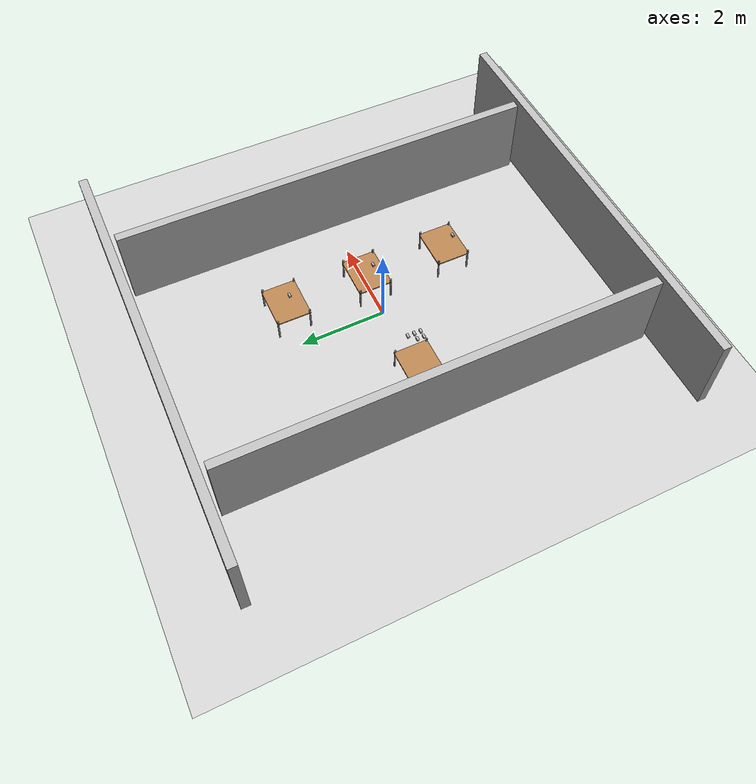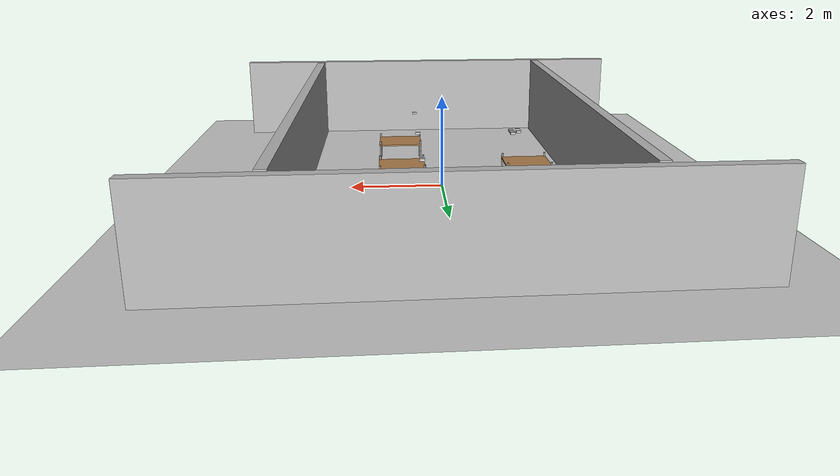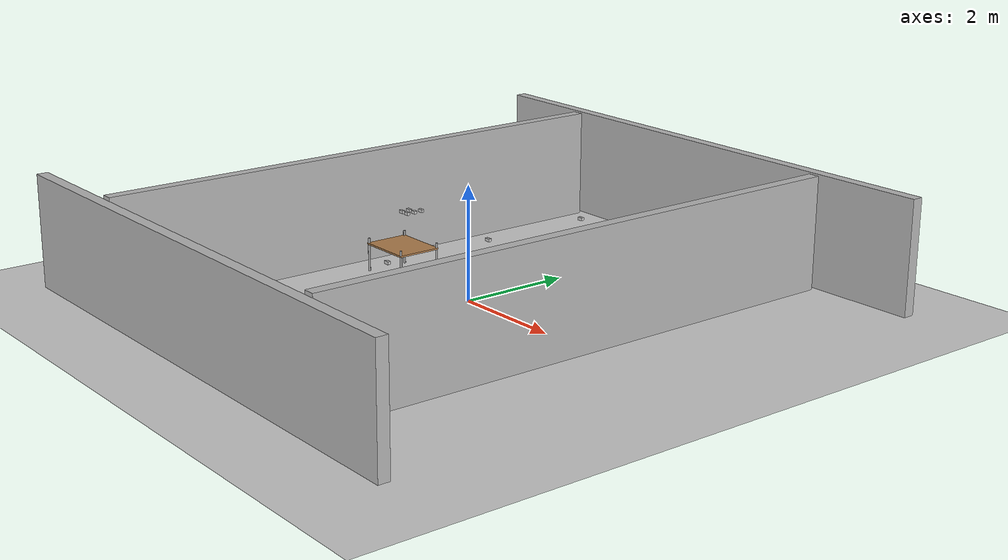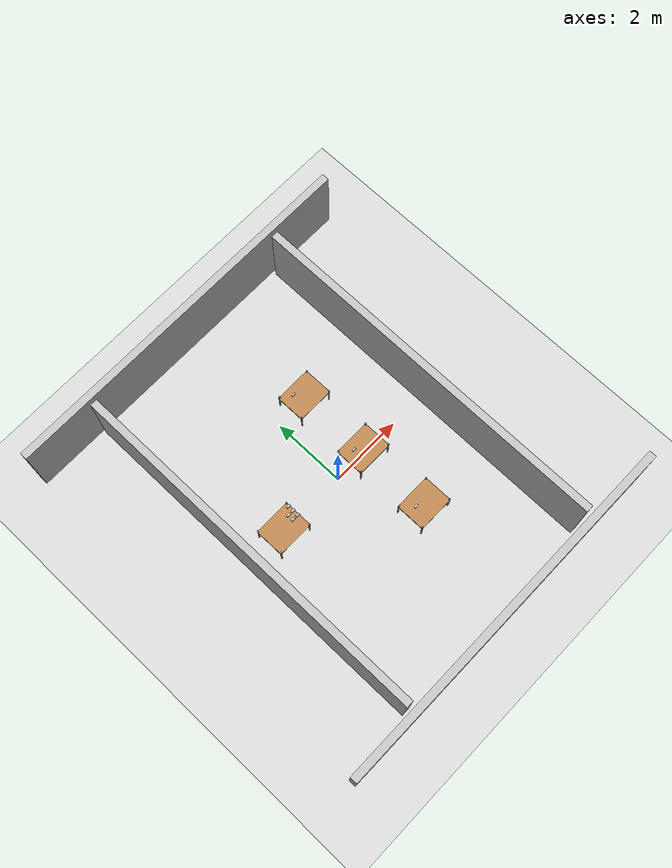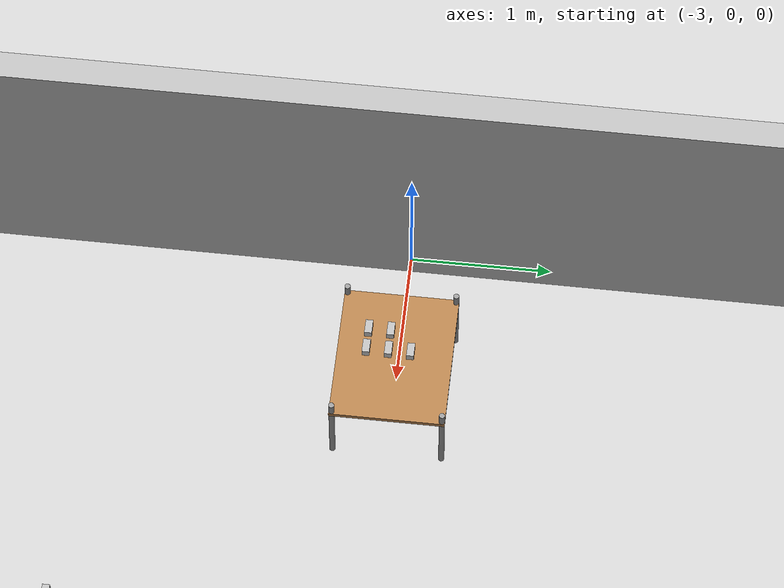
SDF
<?xml version="1.0" ?>
<sdf version="1.4">
  <world name="default">
    <physics type="ode">
      <gravity>0 0 -9.81</gravity>
      <ode>
        <solver>
          <type>quick</type>
          <iters>20</iters>
          <sor>1.0</sor>
        </solver>
        <constraints>
          <cfm>0.0</cfm>
          <erp>0.2</erp>
          <contact_max_correcting_vel>100.0</contact_max_correcting_vel>
          <contact_surface_layer>0.0</contact_surface_layer>
        </constraints>
      </ode>
      <real_time_update_rate>1000</real_time_update_rate>
      <max_step_size>0.001</max_step_size>
    </physics>
    <light type="directional" name="light1">
      <cast_shadows>true</cast_shadows>
      <pose>-2 0 4 0 0 0</pose>
      <diffuse>1.0 1.0 1.0 1</diffuse>
      <specular>0.1 0.1 0.1 1</specular>
      <attenuation>
        <range>20</range>
        <constant>0.9</constant>
        <linear>0.01</linear>
        <quadratic>0.001</quadratic>
      </attenuation>
      <direction>0.2 0.0 -1.0</direction>
    </light>
    <!-- A ground plane -->
    <include>
      <uri>model://ground_plane</uri>
    </include>
    <!-- A table -->
    <include>
      <uri>model://table_0m8</uri>
      <name>table_black</name>
      <pose>0.88 -2.0 -0.1 0 0 0</pose>
    </include>
    <!-- A table -->
    <include>
      <uri>model://table_0m8</uri>
      <name>table_white</name>
      <pose>0.88 0 -0.1 0 0 0</pose>
    </include>
    <!-- A table -->
    <include>
      <uri>model://table_0m8</uri>
      <name>table_color</name>
      <pose>0.88 2.0 -0.1 0 0 0</pose>
    </include>
    <!-- A table -->
    <include>
      <uri>model://table_0m8</uri>
      <name>table_unsorted</name>
      <pose>-1.88 0 -0.1 0 0 0</pose>
    </include>
    <!-- Cube with ArUco markers on the sides -->

    <include>
      <uri>model://ar_cube_2260</uri>
      <name>ar_cube_2260</name>
      <pose>0.53 -2.0 1.2 0 0 0</pose>
    </include>

    <include>
      <uri>model://ar_cube_2312</uri>
      <name>ar_cube_2312</name>
      <pose>0.53 0.00 1.2 0 0 0</pose>
    </include>

    <include>
      <uri>model://ar_cube_2290</uri>
      <name>ar_cube_2290</name>
      <pose>0.53 2.0 1.2 0 0 0</pose>
    </include>

    <include>
      <uri>model://ar_cube_2260</uri>
      <name>ar_cube_2260_unsorted</name>
      <pose>-1.53 0.0 1.2 0 0 3.14</pose>
    </include>

    <include>
      <uri>model://ar_cube_2287</uri>
      <name>ar_cube_2287_unsorted</name>
      <pose>-1.53 -0.15 1.2 0 0 3.14</pose>
    </include>

    <include>
      <uri>model://ar_cube_1658</uri>
      <name>ar_cube_1658_unsorted</name>
      <pose>-1.68 0.00 1.2 0 0 3.14</pose>
    </include>

    <include>
      <uri>model://ar_cube_2497</uri>
      <name>ar_cube_2497_unsorted</name>
      <pose>-1.53 0.15 1.2 0 0 3.14</pose>
    </include>

    <include>
      <uri>model://ar_cube_2558</uri>
      <name>ar_cube_2558_unsorted</name>
      <pose>-1.68 -0.15 1.2 0 0 3.14</pose>
    </include>

    <gui fullscreen="0">
      <camera name="user_camera">
        <pose>1.152670 -0.041479 3.496780 0.000000 1.123640 3.132190</pose>
        <view_controller>orbit</view_controller>
      </camera>
    </gui>

    <!-- the room -->
    <model name="wall_front_model">
      <pose>3.0 0.0 1.0 0.0 0.0 1.57</pose>
      <static>1</static>
      <link name="wall_front_body">
        <inertial>
          <mass>1.000000</mass>
          <inertia>
            <ixx>1.000000</ixx>
            <ixy>0.000000</ixy>
            <ixz>0.000000</ixz>
            <iyy>1.000000</iyy>
            <iyz>0.000000</iyz>
            <izz>1.000000</izz>
          </inertia>
        </inertial>
        <collision name="collision">
          <geometry>
            <box>
              <size>10.000000 0.200000 2.000000</size>
            </box>
          </geometry>
          <max_contacts>10</max_contacts>
          <surface>
            <bounce />
            <friction>
              <ode />
            </friction>
            <contact>
              <ode />
            </contact>
          </surface>
        </collision>
        <visual name="visual">
          <geometry>
            <box>
              <size>10.000000 0.200000 2.000000</size>
            </box>
          </geometry>
        </visual>
        <velocity_decay>
          <linear>0.000000</linear>
          <angular>0.000000</angular>
        </velocity_decay>
        <self_collide>0</self_collide>
        <kinematic>0</kinematic>
        <gravity>1</gravity>
      </link>
    </model>
    <model name="wall_back_model">
      <pose>-3.0 0.0 1.0 0.0 0.0 1.57</pose>
      <static>1</static>
      <link name="wall_back_body">
        <inertial>
          <mass>1.000000</mass>
          <inertia>
            <ixx>1.000000</ixx>
            <ixy>0.000000</ixy>
            <ixz>0.000000</ixz>
            <iyy>1.000000</iyy>
            <iyz>0.000000</iyz>
            <izz>1.000000</izz>
          </inertia>
        </inertial>
        <collision name="collision">
          <geometry>
            <box>
              <size>10.000000 0.200000 2.000000</size>
            </box>
          </geometry>
          <max_contacts>10</max_contacts>
          <surface>
            <bounce />
            <friction>
              <ode />
            </friction>
            <contact>
              <ode />
            </contact>
          </surface>
        </collision>
        <visual name="visual">
          <geometry>
            <box>
              <size>10.000000 0.200000 2.000000</size>
            </box>
          </geometry>
        </visual>
        <velocity_decay>
          <linear>0.000000</linear>
          <angular>0.000000</angular>
        </velocity_decay>
        <self_collide>0</self_collide>
        <kinematic>0</kinematic>
        <gravity>1</gravity>
      </link>
    </model>
    <model name="wall_left_model">
      <pose>0.0 -5.2 1.0 0.0 0.0 0.0</pose>
      <static>1</static>
      <link name="wall_left_body">
        <inertial>
          <mass>1.000000</mass>
          <inertia>
            <ixx>1.000000</ixx>
            <ixy>0.000000</ixy>
            <ixz>0.000000</ixz>
            <iyy>1.000000</iyy>
            <iyz>0.000000</iyz>
            <izz>1.000000</izz>
          </inertia>
        </inertial>
        <collision name="collision">
          <geometry>
            <box>
              <size>10.000000 0.200000 2.000000</size>
            </box>
          </geometry>
          <max_contacts>10</max_contacts>
          <surface>
            <bounce />
            <friction>
              <ode />
            </friction>
            <contact>
              <ode />
            </contact>
          </surface>
        </collision>
        <visual name="visual">
          <geometry>
            <box>
              <size>10.000000 0.200000 2.000000</size>
            </box>
          </geometry>
        </visual>
        <velocity_decay>
          <linear>0.000000</linear>
          <angular>0.000000</angular>
        </velocity_decay>
        <self_collide>0</self_collide>
        <kinematic>0</kinematic>
        <gravity>1</gravity>
      </link>
    </model>
    <model name="wall_right_model">
      <pose>0.0 5.2 1.0 0.0 0.0 0.0</pose>
      <static>1</static>
      <link name="wall_right_body">
        <inertial>
          <mass>1.000000</mass>
          <inertia>
            <ixx>1.000000</ixx>
            <ixy>0.000000</ixy>
            <ixz>0.000000</ixz>
            <iyy>1.000000</iyy>
            <iyz>0.000000</iyz>
            <izz>1.000000</izz>
          </inertia>
        </inertial>
        <collision name="collision">
          <geometry>
            <box>
              <size>10.000000 0.200000 2.000000</size>
            </box>
          </geometry>
          <max_contacts>10</max_contacts>
          <surface>
            <bounce />
            <friction>
              <ode />
            </friction>
            <contact>
              <ode />
            </contact>
          </surface>
        </collision>
        <visual name="visual">
          <geometry>
            <box>
              <size>10.000000 0.200000 2.000000</size>
            </box>
          </geometry>
        </visual>
        <velocity_decay>
          <linear>0.000000</linear>
          <angular>0.000000</angular>
        </velocity_decay>
        <self_collide>0</self_collide>
        <kinematic>0</kinematic>
        <gravity>1</gravity>
      </link>
    </model>
  </world>
</sdf>

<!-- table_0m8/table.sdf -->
<sdf version='1.4'>
<model name='table'>
      <static>1</static>
      <link name='link'>
        <collision name='surface'>
          <pose>0.000000 0.000000 0.600000 0.000000 0.000000 0.000000</pose>
          <geometry>
            <box>
              <size>1.000000 0.800000 0.030000</size>
            </box>
          </geometry>
          <surface>
            <bounce/>
            <friction>
              <ode/>
            </friction>
            <contact>
              <ode/>
            </contact>
          </surface>
        </collision>
        <visual name='visual1'>
          <pose>0.000000 0.000000 0.600000 0.000000 0.000000 0.000000</pose>
          <geometry>
            <box>
              <size>1.000000 0.800000 0.030000</size>
            </box>
          </geometry>
          <material>
            <script>
              <uri>file://media/materials/scripts/gazebo.material</uri>
              <name>Gazebo/Wood</name>
            </script>
          </material>
        </visual>
        <collision name='front_left_leg'>
          <pose>0.480000 0.380000 0.400000 0.000000 0.000000 0.000000</pose>
          <geometry>
            <cylinder>
              <radius>0.020000</radius>
              <length>0.600000</length>
            </cylinder>
          </geometry>
          <surface>
            <bounce/>
            <friction>
              <ode/>
            </friction>
            <contact>
              <ode/>
            </contact>
          </surface>
        </collision>
        <visual name='front_left_leg'>
          <pose>0.480000 0.380000 0.400000 0.000000 0.000000 0.000000</pose>
          <geometry>
            <cylinder>
              <radius>0.020000</radius>
              <length>0.600000</length>
            </cylinder>
          </geometry>
          <material>
            <script>
              <uri>file://media/materials/scripts/gazebo.material</uri>
              <name>Gazebo/Grey</name>
            </script>
          </material>
        </visual>
        <collision name='front_right_leg'>
          <pose>0.480000 -0.380000 0.400000 0.000000 0.000000 0.000000</pose>
          <geometry>
            <cylinder>
              <radius>0.020000</radius>
              <length>0.600000</length>
            </cylinder>
          </geometry>
          <surface>
            <bounce/>
            <friction>
              <ode/>
            </friction>
            <contact>
              <ode/>
            </contact>
          </surface>
        </collision>
        <visual name='front_right_leg'>
          <pose>0.480000 -0.380000 0.400000 0.000000 0.000000 0.000000</pose>
          <geometry>
            <cylinder>
              <radius>0.020000</radius>
              <length>0.600000</length>
            </cylinder>
          </geometry>
          <material>
            <script>
              <uri>file://media/materials/scripts/gazebo.material</uri>
              <name>Gazebo/Grey</name>
            </script>
          </material>
        </visual>
        <collision name='back_right_leg'>
          <pose>-0.480000 -0.380000 0.400000 0.000000 0.000000 0.000000</pose>
          <geometry>
            <cylinder>
              <radius>0.020000</radius>
              <length>0.600000</length>
            </cylinder>
          </geometry>
          <surface>
            <bounce/>
            <friction>
              <ode/>
            </friction>
            <contact>
              <ode/>
            </contact>
          </surface>
        </collision>
        <visual name='back_right_leg'>
          <pose>-0.480000 -0.380000 0.400000 0.000000 0.000000 0.000000</pose>
          <geometry>
            <cylinder>
              <radius>0.020000</radius>
              <length>0.600000</length>
            </cylinder>
          </geometry>
          <material>
            <script>
              <uri>file://media/materials/scripts/gazebo.material</uri>
              <name>Gazebo/Grey</name>
            </script>
          </material>
        </visual>
        <collision name='back_left_leg'>
          <pose>-0.480000 0.380000 0.400000 0.000000 0.000000 0.000000</pose>
          <geometry>
            <cylinder>
              <radius>0.020000</radius>
              <length>0.600000</length>
            </cylinder>
          </geometry>
          <surface>
            <bounce/>
            <friction>
              <ode/>
            </friction>
            <contact>
              <ode/>
            </contact>
          </surface>
        </collision>
        <visual name='back_left_leg'>
          <pose>-0.480000 0.380000 0.400000 0.000000 0.000000 0.000000</pose>
          <geometry>
            <cylinder>
              <radius>0.020000</radius>
              <length>0.600000</length>
            </cylinder>
          </geometry>
          <material>
            <script>
              <uri>file://media/materials/scripts/gazebo.material</uri>
              <name>Gazebo/Grey</name>
            </script>
          </material>
        </visual>
        <velocity_decay>
          <linear>0.000000</linear>
          <angular>0.000000</angular>
        </velocity_decay>
        <self_collide>0</self_collide>
        <kinematic>0</kinematic>
        <gravity>1</gravity>
      </link>
    </model>
</sdf>

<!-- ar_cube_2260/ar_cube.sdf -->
<sdf version='1.6'>
  <model name="ar_cube">
      <static>0</static>
      <link name='link'>
        <inertial>
          <mass>0.25</mass>
          <inertia>
            <ixx>0.00015</ixx>
            <ixy>0.000000</ixy>
            <ixz>0.000000</ixz>
            <iyy>0.00015</iyy>
            <iyz>0.000000</iyz>
            <izz>0.00015</izz>
          </inertia>
        </inertial>
        <collision name='collision'>
          <geometry>
            <mesh>
              <uri>model://ar_cube_2260/meshes/2260.dae</uri>
	          <scale> 0.025 0.025 0.025 </scale>
            </mesh>
          </geometry>
          <surface>
            <friction>
              <ode>
                <mu>30.0</mu>
                <mu2>30.0</mu2>
              </ode>
            </friction>
            <contact>
              <ode>
                <kp>1000000.0</kp>
                <kd>100.0</kd>
                <max_vel>1.0</max_vel>
                <min_depth>0.002</min_depth>
              </ode>
            </contact>
          </surface>
        </collision>
        <visual name='visual'>
          <geometry>
          <mesh>
            <uri>model://ar_cube_2260/meshes/2260.dae</uri>
	        <scale> 0.025 0.025 0.025 </scale>
          </mesh>
          </geometry>
        </visual>
        <velocity_decay>
          <linear>0.000000</linear>
          <angular>0.000000</angular>
        </velocity_decay>
        <self_collide>0</self_collide>
        <kinematic>0</kinematic>
        <gravity>1</gravity>
      </link>
  </model>
</sdf>

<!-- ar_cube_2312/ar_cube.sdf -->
<sdf version='1.6'>
  <model name="ar_cube">
      <static>0</static>
      <link name='link'>
        <inertial>
          <mass>0.25</mass>
          <inertia>
            <ixx>0.00015</ixx>
            <ixy>0.000000</ixy>
            <ixz>0.000000</ixz>
            <iyy>0.00015</iyy>
            <iyz>0.000000</iyz>
            <izz>0.00015</izz>
          </inertia>
        </inertial>
        <collision name='collision'>
          <geometry>
            <mesh>
              <uri>model://ar_cube_2312/meshes/2312.dae</uri>
	          <scale> 0.025 0.025 0.025 </scale>
            </mesh>
          </geometry>
          <surface>
            <friction>
              <ode>
                <mu>30.0</mu>
                <mu2>30.0</mu2>
              </ode>
            </friction>
            <contact>
              <ode>
                <kp>1000000.0</kp>
                <kd>100.0</kd>
                <max_vel>1.0</max_vel>
                <min_depth>0.002</min_depth>
              </ode>
            </contact>
          </surface>
        </collision>
        <visual name='visual'>
          <geometry>
          <mesh>
            <uri>model://ar_cube_2312/meshes/2312.dae</uri>
	        <scale> 0.025 0.025 0.025 </scale>
          </mesh>
          </geometry>
        </visual>
        <velocity_decay>
          <linear>0.000000</linear>
          <angular>0.000000</angular>
        </velocity_decay>
        <self_collide>0</self_collide>
        <kinematic>0</kinematic>
        <gravity>1</gravity>
      </link>
  </model>
</sdf>

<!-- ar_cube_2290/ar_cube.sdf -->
<sdf version='1.6'>
  <model name="ar_cube">
      <static>0</static>
      <link name='link'>
        <inertial>
          <mass>0.25</mass>
          <inertia>
            <ixx>0.00015</ixx>
            <ixy>0.000000</ixy>
            <ixz>0.000000</ixz>
            <iyy>0.00015</iyy>
            <iyz>0.000000</iyz>
            <izz>0.00015</izz>
          </inertia>
        </inertial>
        <collision name='collision'>
          <geometry>
            <mesh>
              <uri>model://ar_cube_2290/meshes/2290.dae</uri>
	          <scale> 0.025 0.025 0.025 </scale>
            </mesh>
          </geometry>
          <surface>
            <friction>
              <ode>
                <mu>30.0</mu>
                <mu2>30.0</mu2>
              </ode>
            </friction>
            <contact>
              <ode>
                <kp>1000000.0</kp>
                <kd>100.0</kd>
                <max_vel>1.0</max_vel>
                <min_depth>0.002</min_depth>
              </ode>
            </contact>
          </surface>
        </collision>
        <visual name='visual'>
          <geometry>
          <mesh>
            <uri>model://ar_cube_2290/meshes/2290.dae</uri>
	        <scale> 0.025 0.025 0.025 </scale>
          </mesh>
          </geometry>
        </visual>
        <velocity_decay>
          <linear>0.000000</linear>
          <angular>0.000000</angular>
        </velocity_decay>
        <self_collide>0</self_collide>
        <kinematic>0</kinematic>
        <gravity>1</gravity>
      </link>
  </model>
</sdf>

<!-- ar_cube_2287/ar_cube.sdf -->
<sdf version='1.6'>
  <model name="ar_cube">
      <static>0</static>
      <link name='link'>
        <inertial>
          <mass>0.25</mass>
          <inertia>
            <ixx>0.00015</ixx>
            <ixy>0.000000</ixy>
            <ixz>0.000000</ixz>
            <iyy>0.00015</iyy>
            <iyz>0.000000</iyz>
            <izz>0.00015</izz>
          </inertia>
        </inertial>
        <collision name='collision'>
          <geometry>
            <mesh>
              <uri>model://ar_cube_2287/meshes/2287.dae</uri>
	          <scale> 0.025 0.025 0.025 </scale>
            </mesh>
          </geometry>
          <surface>
            <friction>
              <ode>
                <mu>30.0</mu>
                <mu2>30.0</mu2>
              </ode>
            </friction>
            <contact>
              <ode>
                <kp>1000000.0</kp>
                <kd>100.0</kd>
                <max_vel>1.0</max_vel>
                <min_depth>0.002</min_depth>
              </ode>
            </contact>
          </surface>
        </collision>
        <visual name='visual'>
          <geometry>
          <mesh>
            <uri>model://ar_cube_2287/meshes/2287.dae</uri>
	        <scale> 0.025 0.025 0.025 </scale>
          </mesh>
          </geometry>
        </visual>
        <velocity_decay>
          <linear>0.000000</linear>
          <angular>0.000000</angular>
        </velocity_decay>
        <self_collide>0</self_collide>
        <kinematic>0</kinematic>
        <gravity>1</gravity>
      </link>
  </model>
</sdf>

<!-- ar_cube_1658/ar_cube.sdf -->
<sdf version='1.6'>
  <model name="ar_cube">
      <static>0</static>
      <link name='link'>
        <inertial>
          <mass>0.25</mass>
          <inertia>
            <ixx>0.00015</ixx>
            <ixy>0.000000</ixy>
            <ixz>0.000000</ixz>
            <iyy>0.00015</iyy>
            <iyz>0.000000</iyz>
            <izz>0.00015</izz>
          </inertia>
        </inertial>
        <collision name='collision'>
          <geometry>
            <mesh>
              <uri>model://ar_cube_1658/meshes/1658.dae</uri>
	          <scale> 0.025 0.025 0.025 </scale>
            </mesh>
          </geometry>
          <surface>
            <friction>
              <ode>
                <mu>30.0</mu>
                <mu2>30.0</mu2>
              </ode>
            </friction>
            <contact>
              <ode>
                <kp>1000000.0</kp>
                <kd>100.0</kd>
                <max_vel>1.0</max_vel>
                <min_depth>0.002</min_depth>
              </ode>
            </contact>
          </surface>
        </collision>
        <visual name='visual'>
          <geometry>
          <mesh>
            <uri>model://ar_cube_1658/meshes/1658.dae</uri>
	        <scale> 0.025 0.025 0.025 </scale>
          </mesh>
          </geometry>
        </visual>
        <velocity_decay>
          <linear>0.000000</linear>
          <angular>0.000000</angular>
        </velocity_decay>
        <self_collide>0</self_collide>
        <kinematic>0</kinematic>
        <gravity>1</gravity>
      </link>
  </model>
</sdf>

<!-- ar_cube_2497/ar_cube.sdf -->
<sdf version='1.6'>
  <model name="ar_cube">
      <static>0</static>
      <link name='link'>
        <inertial>
          <mass>0.25</mass>
          <inertia>
            <ixx>0.00015</ixx>
            <ixy>0.000000</ixy>
            <ixz>0.000000</ixz>
            <iyy>0.00015</iyy>
            <iyz>0.000000</iyz>
            <izz>0.00015</izz>
          </inertia>
        </inertial>
        <collision name='collision'>
          <geometry>
            <mesh>
              <uri>model://ar_cube_2497/meshes/2497.dae</uri>
	          <scale> 0.025 0.025 0.025 </scale>
            </mesh>
          </geometry>
          <surface>
            <friction>
              <ode>
                <mu>30.0</mu>
                <mu2>30.0</mu2>
              </ode>
            </friction>
            <contact>
              <ode>
                <kp>1000000.0</kp>
                <kd>100.0</kd>
                <max_vel>1.0</max_vel>
                <min_depth>0.002</min_depth>
              </ode>
            </contact>
          </surface>
        </collision>
        <visual name='visual'>
          <geometry>
          <mesh>
            <uri>model://ar_cube_2497/meshes/2497.dae</uri>
	        <scale> 0.025 0.025 0.025 </scale>
          </mesh>
          </geometry>
        </visual>
        <velocity_decay>
          <linear>0.000000</linear>
          <angular>0.000000</angular>
        </velocity_decay>
        <self_collide>0</self_collide>
        <kinematic>0</kinematic>
        <gravity>1</gravity>
      </link>
  </model>
</sdf>

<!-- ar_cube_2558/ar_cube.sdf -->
<sdf version='1.6'>
  <model name="ar_cube">
      <static>0</static>
      <link name='link'>
        <inertial>
          <mass>0.25</mass>
          <inertia>
            <ixx>0.00015</ixx>
            <ixy>0.000000</ixy>
            <ixz>0.000000</ixz>
            <iyy>0.00015</iyy>
            <iyz>0.000000</iyz>
            <izz>0.00015</izz>
          </inertia>
        </inertial>
        <collision name='collision'>
          <geometry>
            <mesh>
              <uri>model://ar_cube_2558/meshes/2558.dae</uri>
	          <scale> 0.025 0.025 0.025 </scale>
            </mesh>
          </geometry>
          <surface>
            <friction>
              <ode>
                <mu>30.0</mu>
                <mu2>30.0</mu2>
              </ode>
            </friction>
            <contact>
              <ode>
                <kp>1000000.0</kp>
                <kd>100.0</kd>
                <max_vel>1.0</max_vel>
                <min_depth>0.002</min_depth>
              </ode>
            </contact>
          </surface>
        </collision>
        <visual name='visual'>
          <geometry>
          <mesh>
            <uri>model://ar_cube_2558/meshes/2558.dae</uri>
	        <scale> 0.025 0.025 0.025 </scale>
          </mesh>
          </geometry>
        </visual>
        <velocity_decay>
          <linear>0.000000</linear>
          <angular>0.000000</angular>
        </velocity_decay>
        <self_collide>0</self_collide>
        <kinematic>0</kinematic>
        <gravity>1</gravity>
      </link>
  </model>
</sdf>
